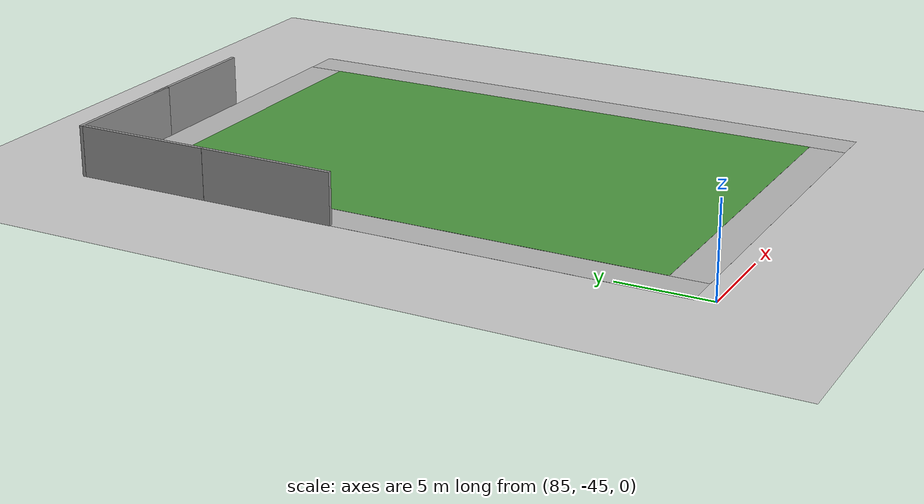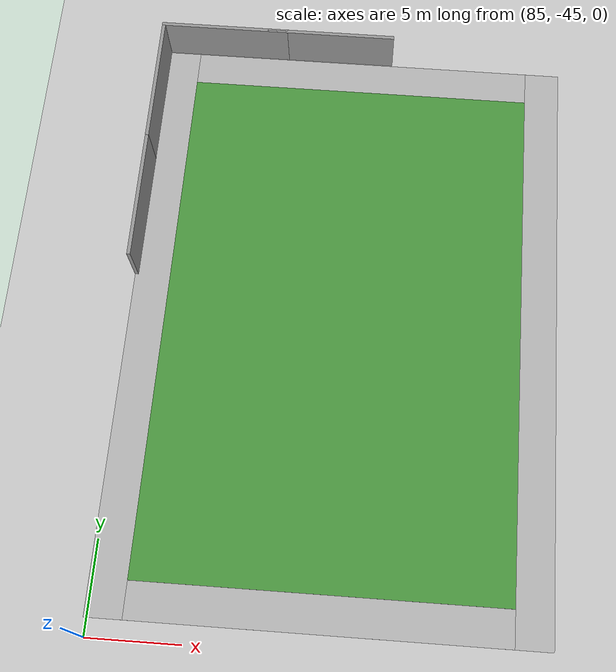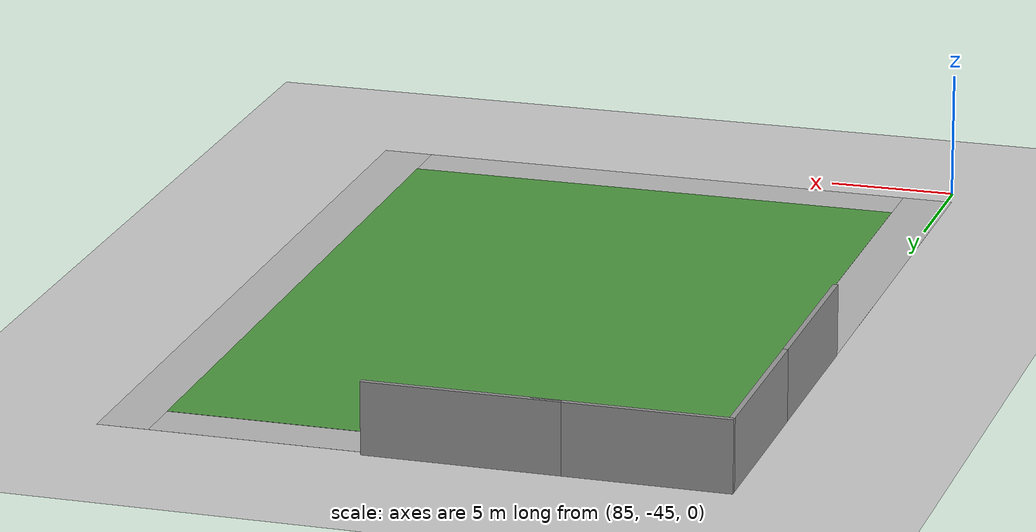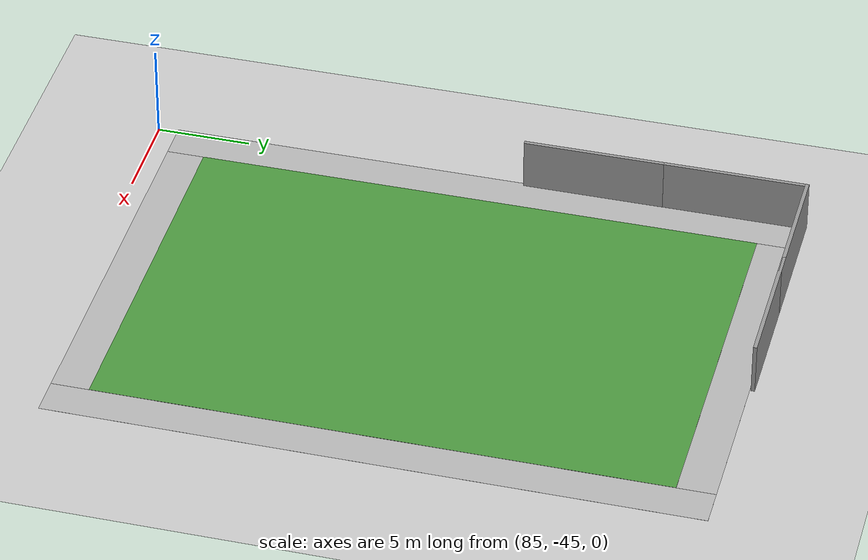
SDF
<sdf version="1.6">
 <world name="default">
  <model name="ground_plane">
   <static>1</static>
   <link name="link">
    <collision name="collision">
     <geometry><plane><normal>0 0 1</normal><size>100 100</size></plane></geometry>
     <surface><friction><ode><mu>100</mu><mu2>50</mu2></ode></friction></surface>
    </collision>
    <visual name="visual">
     <cast_shadows>0</cast_shadows>
     <geometry><plane><normal>0 0 1</normal><size>100 100</size></plane></geometry>
     <material>
      <script><uri>file://media/materials/scripts/gazebo.material</uri><name>Gazebo/Grey</name></script>
     </material>
    </visual>
   </link>
  </model>
  <model name="robo_cup_field">
   <static>1</static>
   <link name="field">
    <pose>0 0 0.01 0 -0 0</pose>
    <collision name="collision">
     <geometry><plane><normal>0 0 1</normal><size>30 20</size></plane></geometry>
     <surface><friction><ode><mu>100</mu><mu2>50</mu2></ode></friction></surface>
    </collision>
    <visual name="base1">
     <pose>0 11 0.001 0 -0 0</pose>
     <cast_shadows>0</cast_shadows>
     <geometry><plane><normal>0 0 1</normal><size>34 2</size></plane></geometry>
     <material>
      <script>
       <uri>model://robocup_3Dsim_field/materials/scripts/</uri>
       <uri>model://robocup_3Dsim_field/materials/textures/</uri>
       <name>RoboCup/FieldBorder</name>
      </script>
     </material>
    </visual>
    <visual name="base2">
     <pose>0 -11 0.001 0 -0 0</pose>
     <cast_shadows>0</cast_shadows>
     <geometry><plane><normal>0 0 1</normal><size>34 2</size></plane></geometry>
     <material>
      <script>
       <uri>model://robocup_3Dsim_field/materials/scripts/</uri>
       <uri>model://robocup_3Dsim_field/materials/textures/</uri>
       <name>RoboCup/FieldBorder</name>
      </script>
     </material>
    </visual>
    <visual name="base3">
     <pose>16 0 0.001 0 -0 0</pose>
     <cast_shadows>0</cast_shadows>
     <geometry><plane><normal>0 0 1</normal><size>2 20</size></plane></geometry>
     <material>
      <script>
       <uri>model://robocup_3Dsim_field/materials/scripts/</uri>
       <uri>model://robocup_3Dsim_field/materials/textures/</uri>
       <name>RoboCup/FieldBorder</name>
      </script>
     </material>
    </visual>
    <visual name="base4">
     <pose>-16 0 0.001 0 -0 0</pose>
     <cast_shadows>0</cast_shadows>
     <geometry><plane><normal>0 0 1</normal><size>2 20</size></plane></geometry>
     <material>
      <script>
       <uri>model://robocup_3Dsim_field/materials/scripts/</uri>
       <uri>model://robocup_3Dsim_field/materials/textures/</uri>
       <name>RoboCup/FieldBorder</name>
      </script>
     </material>
    </visual>
    <visual name="carpet">
     <cast_shadows>0</cast_shadows>
     <geometry><plane><normal>0 0 1</normal><size>30 20</size></plane></geometry>
     <material>
      <script>
       <uri>model://robocup_3Dsim_field/materials/scripts/</uri>
       <uri>model://robocup_3Dsim_field/materials/textures/</uri>
       <name>RoboCup/Grass</name>
      </script>
     </material>
    </visual>
   </link>
   <pose>96.8057 -27.0013 0 0 -0 1.57</pose>
  </model>
  <model name="grey_wall_1">
   <static>1</static>
   <link name="link">
    <pose>0 0 1.4 0 -0 0</pose>
    <collision name="collision"><geometry><box><size>7.5 0.2 2.8</size></box></geometry></collision>
    <visual name="visual">
     <cast_shadows>0</cast_shadows>
     <geometry><box><size>7.5 0.2 2.8</size></box></geometry>
     <material>
      <script>
       <uri>model://grey_wall/materials/scripts</uri>
       <uri>model://grey_wall/materials/textures</uri>
       <name>vrc/grey_wall</name>
      </script>
     </material>
    </visual>
   </link>
   <pose>88.5542 -9.85 0 0 -0 0</pose>
  </model>
  <model name="grey_wall_2">
   <static>1</static>
   <link name="link">
    <pose>0 0 1.4 0 -0 0</pose>
    <collision name="collision"><geometry><box><size>7.5 0.2 2.8</size></box></geometry></collision>
    <visual name="visual">
     <cast_shadows>0</cast_shadows>
     <geometry><box><size>7.5 0.2 2.8</size></box></geometry>
     <material>
      <script>
       <uri>model://grey_wall/materials/scripts</uri>
       <uri>model://grey_wall/materials/textures</uri>
       <name>vrc/grey_wall</name>
      </script>
     </material>
    </visual>
   </link>
   <pose>94.888 -9.85 0 0 -0 0</pose>
  </model>
  <model name="grey_wall_9">
   <static>1</static>
   <link name="link">
    <pose>0 0 1.4 0 -0 0</pose>
    <collision name="collision"><geometry><box><size>7.5 0.2 2.8</size></box></geometry></collision>
    <visual name="visual">
     <cast_shadows>0</cast_shadows>
     <geometry><box><size>7.5 0.2 2.8</size></box></geometry>
     <material>
      <script>
       <uri>model://grey_wall/materials/scripts</uri>
       <uri>model://grey_wall/materials/textures</uri>
       <name>vrc/grey_wall</name>
      </script>
     </material>
    </visual>
   </link>
   <pose>84.9025 -13.675 0 0 -0 1.57</pose>
  </model>
  <model name="grey_wall_10">
   <static>1</static>
   <link name="link">
    <pose>0 0 1.4 0 -0 0</pose>
    <collision name="collision"><geometry><box><size>7.5 0.2 2.8</size></box></geometry></collision>
    <visual name="visual">
     <cast_shadows>0</cast_shadows>
     <geometry><box><size>7.5 0.2 2.8</size></box></geometry>
     <material>
      <script>
       <uri>model://grey_wall/materials/scripts</uri>
       <uri>model://grey_wall/materials/textures</uri>
       <name>vrc/grey_wall</name>
      </script>
     </material>
    </visual>
   </link>
   <pose>84.9025 -21.1713 0 0 -0 1.57</pose>
  </model>
 </world>
</sdf>
